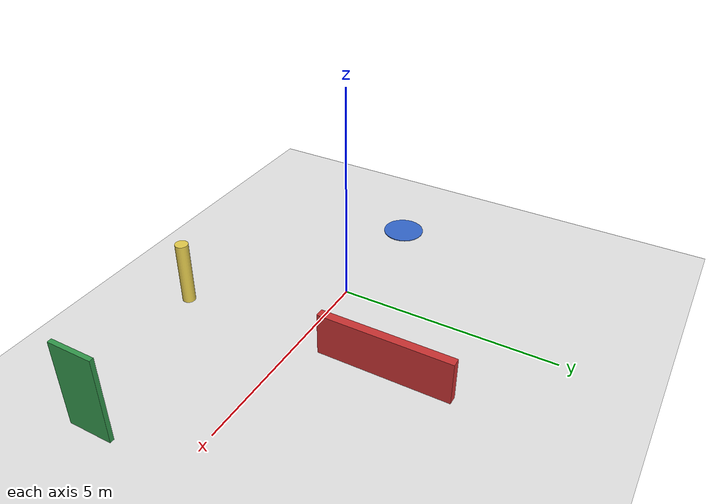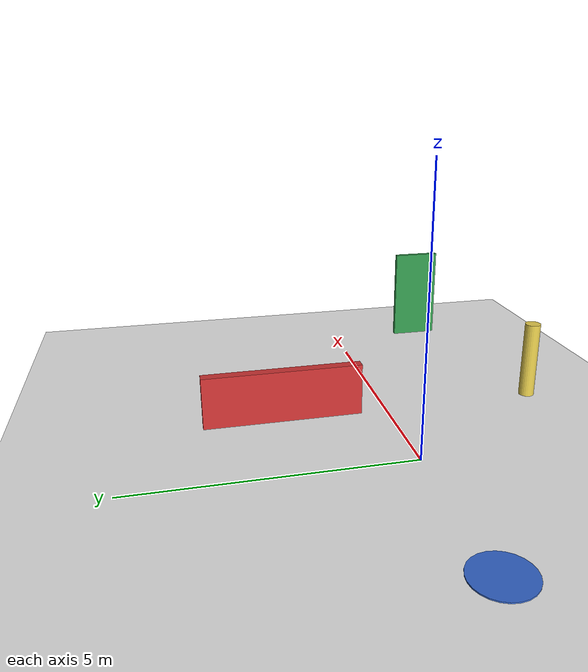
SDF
<sdf version="1.9">
 <world name="cocoa_demo">
  <physics type="ode">
   <max_step_size>0.001</max_step_size>
   <real_time_factor>1.0</real_time_factor>
   <real_time_update_rate>1000</real_time_update_rate>
  </physics>
  <plugin name="gz::sim::systems::Physics" filename="libgz-sim-physics-system.so"/>
  <plugin name="gz::sim::systems::UserCommands" filename="libgz-sim-user-commands-system.so"/>
  <plugin name="gz::sim::systems::SceneBroadcaster" filename="libgz-sim-scene-broadcaster-system.so"/>
  <plugin name="gz::sim::systems::Contact" filename="libgz-sim-contact-system.so"/>
  <plugin name="gz::sim::systems::Imu" filename="libgz-sim-imu-system.so"/>
  <plugin name="gz::sim::systems::AirPressure" filename="libgz-sim-air-pressure-system.so"/>
  <plugin name="gz::sim::systems::Sensors" filename="libgz-sim-sensors-system.so">
   <render_engine>ogre2</render_engine>
  </plugin>
  <gravity>0 0 -9.80665</gravity>
  <magnetic_field>6e-06 2.3e-05 -4.2e-05</magnetic_field>
  <atmosphere type="adiabatic"/>
  <scene>
   <grid>true</grid>
   <ambient>0.4 0.4 0.4 1</ambient>
   <background>0.7 0.85 1.0 1</background>
   <shadows>true</shadows>
  </scene>
  <model name="ground_plane">
   <static>true</static>
   <link name="link">
    <collision name="collision">
     <geometry><plane><normal>0 0 1</normal><size>20 20</size></plane></geometry>
    </collision>
    <visual name="visual">
     <geometry><plane><normal>0 0 1</normal><size>20 20</size></plane></geometry>
     <material><ambient>0.9 0.9 0.9 1</ambient><diffuse>0.9 0.9 0.9 1</diffuse></material>
    </visual>
   </link>
  </model>
  <light type="directional" name="sun">
   <pose>0 0 10 0 0 0</pose>
   <diffuse>0.8 0.8 0.8 1</diffuse>
   <specular>0.2 0.2 0.2 1</specular>
   <attenuation>
    <range>1000</range>
    <constant>0.9</constant>
    <linear>0.01</linear>
    <quadratic>0.001</quadratic>
   </attenuation>
   <direction>-0.5 0.1 -0.9</direction>
  </light>
  <model name="lamp">
   <static>true</static>
   <pose>2.0 -3.0 0.75 0 0 0</pose>
   <link name="link">
    <collision name="collision">
     <geometry><cylinder><radius>0.15</radius><length>1.5</length></cylinder></geometry>
    </collision>
    <visual name="visual">
     <geometry><cylinder><radius>0.15</radius><length>1.5</length></cylinder></geometry>
     <material><ambient>0.9 0.8 0.3 1</ambient><diffuse>0.9 0.8 0.3 1</diffuse></material>
    </visual>
   </link>
  </model>
  <model name="door">
   <static>true</static>
   <pose>6.0 -2.0 1.0 0 0 0</pose>
   <link name="link">
    <collision name="collision"><geometry><box><size>0.1 1.0 2.0</size></box></geometry></collision>
    <visual name="visual">
     <geometry><box><size>0.1 1.0 2.0</size></box></geometry>
     <material><ambient>0.2 0.6 0.3 1</ambient><diffuse>0.2 0.6 0.3 1</diffuse></material>
    </visual>
   </link>
  </model>
  <model name="wall_obstacle">
   <static>true</static>
   <pose>2.0 2.0 0.5 0 0 0</pose>
   <link name="link">
    <collision name="collision"><geometry><box><size>0.2 3.0 1.0</size></box></geometry></collision>
    <visual name="visual">
     <geometry><box><size>0.2 3.0 1.0</size></box></geometry>
     <material><ambient>0.8 0.2 0.2 1</ambient><diffuse>0.8 0.2 0.2 1</diffuse></material>
    </visual>
   </link>
  </model>
  <model name="landing_pad">
   <static>true</static>
   <pose>-3.0 0.0 0.01 0 0 0</pose>
   <link name="link">
    <collision name="collision">
     <geometry><cylinder><radius>0.5</radius><length>0.02</length></cylinder></geometry>
    </collision>
    <visual name="visual">
     <geometry><cylinder><radius>0.5</radius><length>0.02</length></cylinder></geometry>
     <material><ambient>0.2 0.4 0.8 1</ambient><diffuse>0.2 0.4 0.8 1</diffuse></material>
    </visual>
   </link>
  </model>
 </world>
</sdf>
